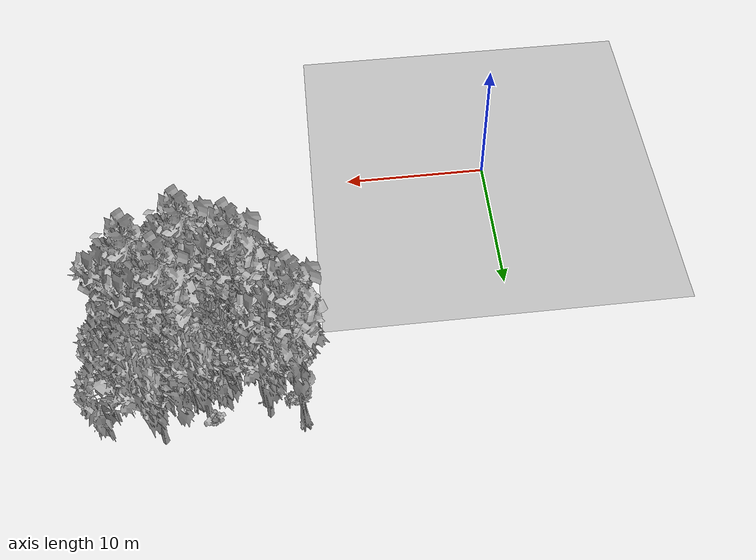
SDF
<sdf version="1.7">
 <world name="default">
  <model name="ground_plane">
   <static>1</static>
   <link name="link">
    <collision name="collision">
     <pose>-50 0 0 0 -0 0</pose>
     <geometry><plane><normal>0 0 1</normal><size>80 80</size></plane></geometry>
     <surface><contact><ode><min_depth>0.01</min_depth><max_vel>0</max_vel></ode></contact></surface>
    </collision>
    <visual name="grass">
     <cast_shadows>0</cast_shadows>
     <geometry>
      <mesh>
       <scale>0.46714285714285714 0.46714285714285714 0.1</scale>
       <uri>file://grass_plane/meshes/grass_plane.dae</uri>
      </mesh>
     </geometry>
    </visual>
   </link>
  </model>
  <model name="Tree 61">
   <static>1</static>
   <pose>19.676608493838224 14.117666645305363 0 1.57079 -0 0</pose>
   <link name="link">
    <collision name="collision">
     <geometry><mesh><scale>3.5 5 3.5</scale><uri>model://tree_9/meshes/tree_9.obj</uri></mesh></geometry>
    </collision>
    <visual name="visual">
     <geometry><mesh><scale>3.5 5 3.5</scale><uri>model://tree_9/meshes/tree_9.obj</uri></mesh></geometry>
    </visual>
   </link>
  </model>
  <model name="Tree 62">
   <static>1</static>
   <pose>14.04824001544992 18.91943047016892 0 1.57079 -0 0</pose>
   <link name="link">
    <collision name="collision">
     <geometry><mesh><scale>3.5 5 3.5</scale><uri>model://tree_9/meshes/tree_9.obj</uri></mesh></geometry>
    </collision>
    <visual name="visual">
     <geometry><mesh><scale>3.5 5 3.5</scale><uri>model://tree_9/meshes/tree_9.obj</uri></mesh></geometry>
    </visual>
   </link>
  </model>
  <model name="Tree 97">
   <static>1</static>
   <pose>16.358408847906517 17.42834059477495 0 1.57079 -0 0</pose>
   <link name="link">
    <collision name="collision">
     <geometry><mesh><scale>3.5 5 3.5</scale><uri>model://tree_2/meshes/tree_2.obj</uri></mesh></geometry>
    </collision>
    <visual name="visual">
     <geometry><mesh><scale>3.5 5 3.5</scale><uri>model://tree_2/meshes/tree_2.obj</uri></mesh></geometry>
    </visual>
   </link>
  </model>
  <model name="Tree 242">
   <static>1</static>
   <pose>16.07450924906469 18.169577340542332 0 1.57079 -0 0</pose>
   <link name="link">
    <collision name="collision">
     <geometry><mesh><scale>3.5 5 3.5</scale><uri>model://tree_2/meshes/tree_2.obj</uri></mesh></geometry>
    </collision>
    <visual name="visual">
     <geometry><mesh><scale>3.5 5 3.5</scale><uri>model://tree_2/meshes/tree_2.obj</uri></mesh></geometry>
    </visual>
   </link>
  </model>
  <model name="Tree 401">
   <static>1</static>
   <pose>17.09099123909521 15.251173469383886 0 1.57079 -0 0</pose>
   <link name="link">
    <collision name="collision">
     <geometry><mesh><scale>3.5 5 3.5</scale><uri>model://tree_9/meshes/tree_9.obj</uri></mesh></geometry>
    </collision>
    <visual name="visual">
     <geometry><mesh><scale>3.5 5 3.5</scale><uri>model://tree_9/meshes/tree_9.obj</uri></mesh></geometry>
    </visual>
   </link>
  </model>
  <model name="Tree 458">
   <static>1</static>
   <pose>20.696525341287277 16.975342059628822 0 1.57079 -0 0</pose>
   <link name="link">
    <collision name="collision">
     <geometry><mesh><scale>3.5 5 3.5</scale><uri>model://tree_9/meshes/tree_9.obj</uri></mesh></geometry>
    </collision>
    <visual name="visual">
     <geometry><mesh><scale>3.5 5 3.5</scale><uri>model://tree_9/meshes/tree_9.obj</uri></mesh></geometry>
    </visual>
   </link>
  </model>
  <model name="Tree 476">
   <static>1</static>
   <pose>22.61372571592174 16.433733989931547 0 1.57079 -0 0</pose>
   <link name="link">
    <collision name="collision">
     <geometry><mesh><scale>3.5 5 3.5</scale><uri>model://tree_2/meshes/tree_2.obj</uri></mesh></geometry>
    </collision>
    <visual name="visual">
     <geometry><mesh><scale>3.5 5 3.5</scale><uri>model://tree_2/meshes/tree_2.obj</uri></mesh></geometry>
    </visual>
   </link>
  </model>
  <model name="Tree 479">
   <static>1</static>
   <pose>22.376532398517504 15.368866298897444 0 1.57079 -0 0</pose>
   <link name="link">
    <collision name="collision">
     <geometry><mesh><scale>3.5 5 3.5</scale><uri>model://tree_9/meshes/tree_9.obj</uri></mesh></geometry>
    </collision>
    <visual name="visual">
     <geometry><mesh><scale>3.5 5 3.5</scale><uri>model://tree_9/meshes/tree_9.obj</uri></mesh></geometry>
    </visual>
   </link>
  </model>
  <model name="Tree 496">
   <static>1</static>
   <pose>22.519049611991008 19.263363027337036 0 1.57079 -0 0</pose>
   <link name="link">
    <collision name="collision">
     <geometry><mesh><scale>3.5 5 3.5</scale><uri>model://tree_2/meshes/tree_2.obj</uri></mesh></geometry>
    </collision>
    <visual name="visual">
     <geometry><mesh><scale>3.5 5 3.5</scale><uri>model://tree_2/meshes/tree_2.obj</uri></mesh></geometry>
    </visual>
   </link>
  </model>
  <model name="Tree 500">
   <static>1</static>
   <pose>19.834237106403158 18.02894486290551 0 1.57079 -0 0</pose>
   <link name="link">
    <collision name="collision">
     <geometry><mesh><scale>3.5 5 3.5</scale><uri>model://tree_2/meshes/tree_2.obj</uri></mesh></geometry>
    </collision>
    <visual name="visual">
     <geometry><mesh><scale>3.5 5 3.5</scale><uri>model://tree_2/meshes/tree_2.obj</uri></mesh></geometry>
    </visual>
   </link>
  </model>
  <model name="Tree 506">
   <static>1</static>
   <pose>16.97333890918174 15.120109944578914 0 1.57079 -0 0</pose>
   <link name="link">
    <collision name="collision">
     <geometry><mesh><scale>3.5 5 3.5</scale><uri>model://tree_2/meshes/tree_2.obj</uri></mesh></geometry>
    </collision>
    <visual name="visual">
     <geometry><mesh><scale>3.5 5 3.5</scale><uri>model://tree_2/meshes/tree_2.obj</uri></mesh></geometry>
    </visual>
   </link>
  </model>
  <model name="Tree 588">
   <static>1</static>
   <pose>18.02100778416868 13.57462370883654 0 1.57079 -0 0</pose>
   <link name="link">
    <collision name="collision">
     <geometry><mesh><scale>3.5 5 3.5</scale><uri>model://tree_2/meshes/tree_2.obj</uri></mesh></geometry>
    </collision>
    <visual name="visual">
     <geometry><mesh><scale>3.5 5 3.5</scale><uri>model://tree_2/meshes/tree_2.obj</uri></mesh></geometry>
    </visual>
   </link>
  </model>
  <model name="Bush 43">
   <static>1</static>
   <pose>19.684965597499314 18.5225327369954 0 1.57079 -0 0</pose>
   <link name="link">
    <collision name="collision">
     <geometry><mesh><scale>2 2 2</scale><uri>model://bush_0/meshes/bush_0.obj</uri></mesh></geometry>
     <surface><contact><collide_without_contact>false</collide_without_contact></contact></surface>
    </collision>
    <visual name="visual">
     <geometry><mesh><scale>2 2 2</scale><uri>model://bush_0/meshes/bush_0.obj</uri></mesh></geometry>
    </visual>
   </link>
  </model>
  <model name="Bush 74">
   <static>1</static>
   <pose>13.473724539922003 14.016636243755343 0 1.57079 -0 0</pose>
   <link name="link">
    <collision name="collision">
     <geometry><mesh><scale>2 2 2</scale><uri>model://bush_5/meshes/bush_5.obj</uri></mesh></geometry>
     <surface><contact><collide_without_contact>false</collide_without_contact></contact></surface>
    </collision>
    <visual name="visual">
     <geometry><mesh><scale>2 2 2</scale><uri>model://bush_5/meshes/bush_5.obj</uri></mesh></geometry>
    </visual>
   </link>
  </model>
  <model name="Bush 180">
   <static>1</static>
   <pose>19.717090511096167 13.175154118489509 0 1.57079 -0 0</pose>
   <link name="link">
    <collision name="collision">
     <geometry><mesh><scale>2 2 2</scale><uri>model://bush_1/meshes/bush_1.obj</uri></mesh></geometry>
     <surface><contact><collide_without_contact>false</collide_without_contact></contact></surface>
    </collision>
    <visual name="visual">
     <geometry><mesh><scale>2 2 2</scale><uri>model://bush_1/meshes/bush_1.obj</uri></mesh></geometry>
    </visual>
   </link>
  </model>
  <model name="Bush 268">
   <static>1</static>
   <pose>18.581954942348524 14.847140160154652 0 1.57079 -0 0</pose>
   <link name="link">
    <collision name="collision">
     <geometry><mesh><scale>2 2 2</scale><uri>model://bush_2/meshes/bush_2.obj</uri></mesh></geometry>
     <surface><contact><collide_without_contact>false</collide_without_contact></contact></surface>
    </collision>
    <visual name="visual">
     <geometry><mesh><scale>2 2 2</scale><uri>model://bush_2/meshes/bush_2.obj</uri></mesh></geometry>
    </visual>
   </link>
  </model>
  <model name="Bush 289">
   <static>1</static>
   <pose>13.735516326270584 14.389421519531979 0 1.57079 -0 0</pose>
   <link name="link">
    <collision name="collision">
     <geometry><mesh><scale>2 2 2</scale><uri>model://bush_2/meshes/bush_2.obj</uri></mesh></geometry>
     <surface><contact><collide_without_contact>false</collide_without_contact></contact></surface>
    </collision>
    <visual name="visual">
     <geometry><mesh><scale>2 2 2</scale><uri>model://bush_2/meshes/bush_2.obj</uri></mesh></geometry>
    </visual>
   </link>
  </model>
  <model name="Bush 408">
   <static>1</static>
   <pose>19.847086321233142 15.577591600886663 0 1.57079 -0 0</pose>
   <link name="link">
    <collision name="collision">
     <geometry><mesh><scale>2 2 2</scale><uri>model://bush_1/meshes/bush_1.obj</uri></mesh></geometry>
     <surface><contact><collide_without_contact>false</collide_without_contact></contact></surface>
    </collision>
    <visual name="visual">
     <geometry><mesh><scale>2 2 2</scale><uri>model://bush_1/meshes/bush_1.obj</uri></mesh></geometry>
    </visual>
   </link>
  </model>
  <model name="Bush 422">
   <static>1</static>
   <pose>21.07281933736578 14.522128575196902 0 1.57079 -0 0</pose>
   <link name="link">
    <collision name="collision">
     <geometry><mesh><scale>2 2 2</scale><uri>model://bush_5/meshes/bush_5.obj</uri></mesh></geometry>
     <surface><contact><collide_without_contact>false</collide_without_contact></contact></surface>
    </collision>
    <visual name="visual">
     <geometry><mesh><scale>2 2 2</scale><uri>model://bush_5/meshes/bush_5.obj</uri></mesh></geometry>
    </visual>
   </link>
  </model>
  <model name="Bush 478">
   <static>1</static>
   <pose>13.656529137741558 13.528570327218489 0 1.57079 -0 0</pose>
   <link name="link">
    <collision name="collision">
     <geometry><mesh><scale>2 2 2</scale><uri>model://bush_0/meshes/bush_0.obj</uri></mesh></geometry>
     <surface><contact><collide_without_contact>false</collide_without_contact></contact></surface>
    </collision>
    <visual name="visual">
     <geometry><mesh><scale>2 2 2</scale><uri>model://bush_0/meshes/bush_0.obj</uri></mesh></geometry>
    </visual>
   </link>
  </model>
  <model name="Bush 504">
   <static>1</static>
   <pose>23.431796493032543 14.550560804133035 0 1.57079 -0 0</pose>
   <link name="link">
    <collision name="collision">
     <geometry><mesh><scale>2 2 2</scale><uri>model://bush_2/meshes/bush_2.obj</uri></mesh></geometry>
     <surface><contact><collide_without_contact>false</collide_without_contact></contact></surface>
    </collision>
    <visual name="visual">
     <geometry><mesh><scale>2 2 2</scale><uri>model://bush_2/meshes/bush_2.obj</uri></mesh></geometry>
    </visual>
   </link>
  </model>
  <model name="Bush 629">
   <static>1</static>
   <pose>14.755254289588052 17.28768060070525 0 1.57079 -0 0</pose>
   <link name="link">
    <collision name="collision">
     <geometry><mesh><scale>2 2 2</scale><uri>model://bush_2/meshes/bush_2.obj</uri></mesh></geometry>
     <surface><contact><collide_without_contact>false</collide_without_contact></contact></surface>
    </collision>
    <visual name="visual">
     <geometry><mesh><scale>2 2 2</scale><uri>model://bush_2/meshes/bush_2.obj</uri></mesh></geometry>
    </visual>
   </link>
  </model>
  <model name="Bush 637">
   <static>1</static>
   <pose>16.150971457191304 17.268159455678642 0 1.57079 -0 0</pose>
   <link name="link">
    <collision name="collision">
     <geometry><mesh><scale>2 2 2</scale><uri>model://bush_4/meshes/bush_4.obj</uri></mesh></geometry>
     <surface><contact><collide_without_contact>false</collide_without_contact></contact></surface>
    </collision>
    <visual name="visual">
     <geometry><mesh><scale>2 2 2</scale><uri>model://bush_4/meshes/bush_4.obj</uri></mesh></geometry>
    </visual>
   </link>
  </model>
 </world>
</sdf>
